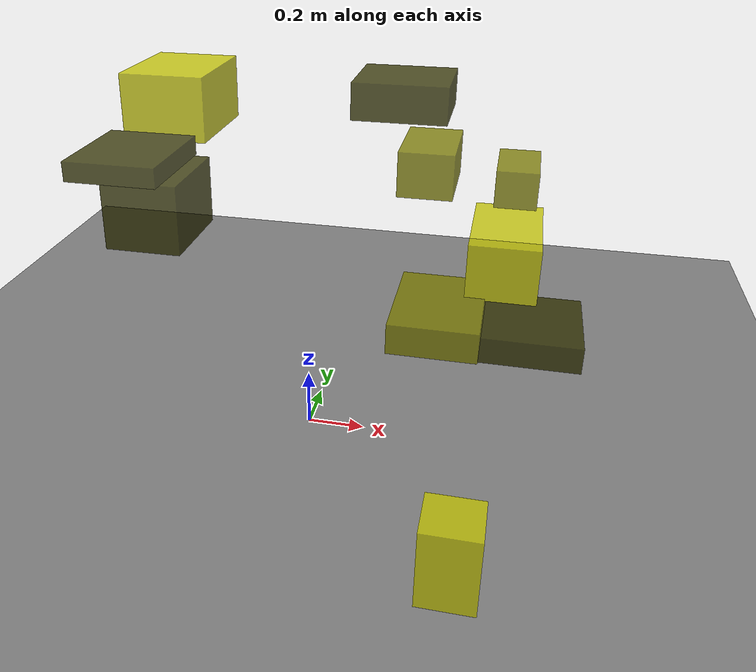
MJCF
<?xml version="1.0"?>
<mujoco model="obstacle_scene">
  <compiler angle="radian" coordinate="local"/>
  <option timestep="0.001" gravity="0 0 -9.81"/>

  <asset>
    <material name="obstacle_mat" rgba="0.8 0.8 0.0 0.8"/>
    <material name="ground_mat" rgba="0.5 0.5 0.5 1"/>
  </asset>

  <worldbody>
    <!-- Ground plane -->
    <geom name="ground" type="plane" size="3 3 0.1" material="ground_mat"/>

    <!-- Obstacles -->
    <body name="obstacle_0" pos="-0.660886 0.119173 0.912745">
      <geom name="obs_0" type="box" size="0.163543 0.192363 0.035366" rgba="0.2 0.2 0.0 0.8"/>
    </body>
    <body name="obstacle_1" pos="0.309650 0.806989 0.748799">
      <geom name="obs_1" type="box" size="0.109339 0.180992 0.091106" rgba="0.5 0.5 0.0 0.8"/>
    </body>
    <body name="obstacle_2" pos="0.635603 -0.334128 0.882849">
      <geom name="obs_2" type="box" size="0.093355 0.159628 0.076749" rgba="0.8 0.8 0.0 0.8"/>
    </body>
    <body name="obstacle_3" pos="0.726090 -0.113487 0.529010">
      <geom name="obs_3" type="box" size="0.163301 0.158867 0.041309" rgba="0.2 0.2 0.0 0.8"/>
    </body>
    <body name="obstacle_4" pos="0.648787 -0.398359 1.115908">
      <geom name="obs_4" type="box" size="0.052233 0.095638 0.047323" rgba="0.5 0.5 0.0 0.8"/>
    </body>
    <body name="obstacle_5" pos="-0.621199 0.516421 1.037752">
      <geom name="obs_5" type="box" size="0.157313 0.197351 0.119023" rgba="0.8 0.8 0.0 0.8"/>
    </body>
    <body name="obstacle_6" pos="-0.658617 0.309191 0.680225">
      <geom name="obs_6" type="box" size="0.144477 0.179675 0.131681" rgba="0.2 0.2 0.0 0.8"/>
    </body>
    <body name="obstacle_7" pos="0.481387 -0.533366 0.771113">
      <geom name="obs_7" type="box" size="0.114971 0.158876 0.040849" rgba="0.5 0.5 0.0 0.8"/>
    </body>
    <body name="obstacle_8" pos="0.572536 -0.728245 0.146421">
      <geom name="obs_8" type="box" size="0.086526 0.084354 0.128521" rgba="0.8 0.8 0.0 0.8"/>
    </body>
    <body name="obstacle_9" pos="0.201085 0.764849 1.032684">
      <geom name="obs_9" type="box" size="0.182325 0.170610 0.071382" rgba="0.2 0.2 0.0 0.8"/>
    </body>
  </worldbody>
</mujoco>
